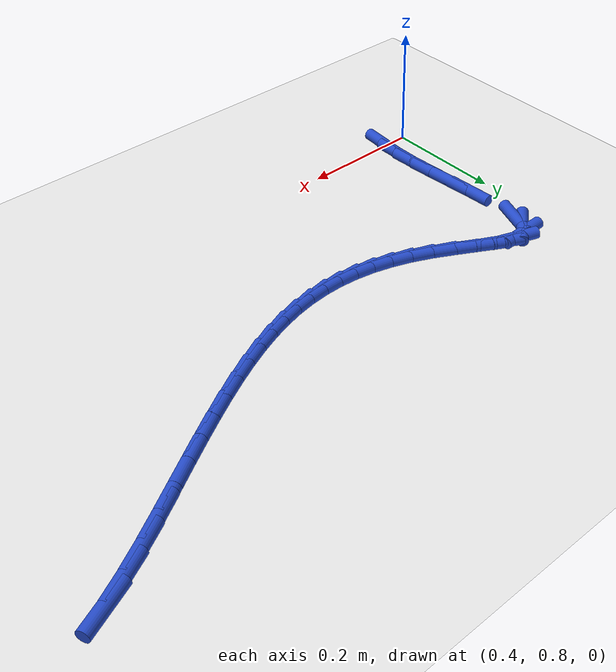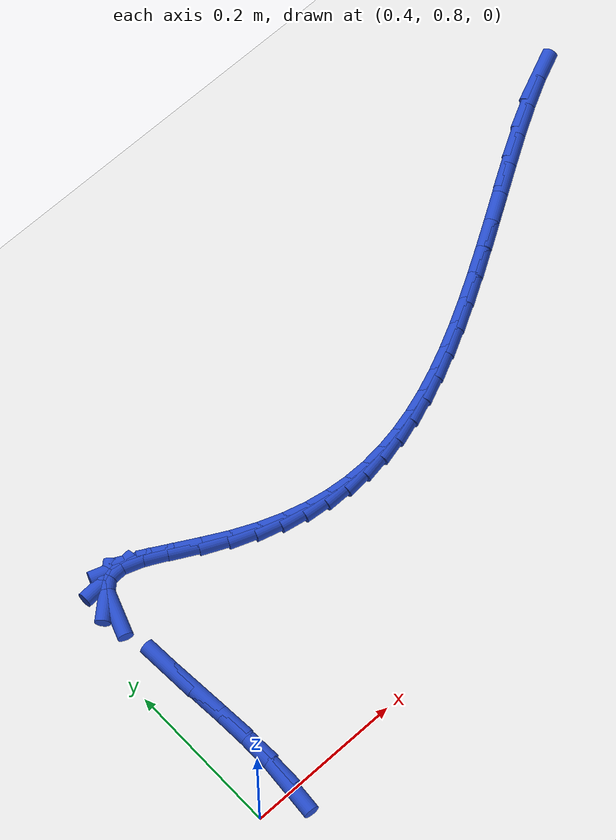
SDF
<sdf version="1.6">
 <world name="default">
  <model name="ground_plane">
   <static>1</static>
   <link name="link">
    <collision name="collision">
     <geometry><plane><normal>0 0 1</normal><size>100 100</size></plane></geometry>
     <surface><friction><ode><mu>100</mu><mu2>50</mu2></ode></friction></surface>
    </collision>
    <visual name="visual">
     <cast_shadows>0</cast_shadows>
     <geometry><plane><normal>0 0 1</normal><size>100 100</size></plane></geometry>
     <material>
      <script><uri>file://media/materials/scripts/gazebo.material</uri><name>Gazebo/WhiteGlow</name></script>
     </material>
    </visual>
   </link>
  </model>
  <model name="line">
   <link name="link_30">
    <pose>0.4498031476568334 0.8027802074671776 0.01 0 1.57 1.4865435165023273</pose>
    <collision name="collision">
     <geometry><cylinder><radius>0.01</radius><length>0.08</length></cylinder></geometry>
    </collision>
    <visual name="visual">
     <material>
      <script><name>Gazebo/Blue</name><uri>file://media/materials/scripts/gazebo.material</uri></script>
     </material>
     <geometry><cylinder><radius>0.01</radius><length>0.08</length></cylinder></geometry>
    </visual>
   </link>
   <link name="link_31">
    <pose>0.452923564762341 0.8397288876807449 0.01 0 1.57 1.562304591862251</pose>
    <collision name="collision">
     <geometry><cylinder><radius>0.01</radius><length>0.08</length></cylinder></geometry>
    </collision>
    <visual name="visual">
     <material>
      <script><name>Gazebo/Blue</name><uri>file://media/materials/scripts/gazebo.material</uri></script>
     </material>
     <geometry><cylinder><radius>0.01</radius><length>0.08</length></cylinder></geometry>
    </visual>
   </link>
   <link name="link_32">
    <pose>0.45326319179582636 0.8797229375053843 0.01 0 1.57 -1.5270688987369447</pose>
    <collision name="collision">
     <geometry><cylinder><radius>0.01</radius><length>0.08</length></cylinder></geometry>
    </collision>
    <visual name="visual">
     <material>
      <script><name>Gazebo/Blue</name><uri>file://media/materials/scripts/gazebo.material</uri></script>
     </material>
     <geometry><cylinder><radius>0.01</radius><length>0.08</length></cylinder></geometry>
    </visual>
   </link>
   <link name="link_33">
    <pose>0.451417649953982 0.921901622471293 0.01 0 1.57 -1.5018023446379443</pose>
    <collision name="collision">
     <geometry><cylinder><radius>0.01</radius><length>0.08</length></cylinder></geometry>
    </collision>
    <visual name="visual">
     <material>
      <script><name>Gazebo/Blue</name><uri>file://media/materials/scripts/gazebo.material</uri></script>
     </material>
     <geometry><cylinder><radius>0.01</radius><length>0.08</length></cylinder></geometry>
    </visual>
   </link>
   <link name="link_34">
    <pose>0.4484644470323517 0.9646374586436969 0.01 0 1.57 -1.4995237731716504</pose>
    <collision name="collision">
     <geometry><cylinder><radius>0.01</radius><length>0.08</length></cylinder></geometry>
    </collision>
    <visual name="visual">
     <material>
      <script><name>Gazebo/Blue</name><uri>file://media/materials/scripts/gazebo.material</uri></script>
     </material>
     <geometry><cylinder><radius>0.01</radius><length>0.08</length></cylinder></geometry>
    </visual>
   </link>
   <link name="link_35">
    <pose>0.445490917989463 1.006287325687106 0.01 0 1.57 -1.5218508118113179</pose>
    <collision name="collision">
     <geometry><cylinder><radius>0.01</radius><length>0.08</length></cylinder></geometry>
    </collision>
    <visual name="visual">
     <material>
      <script><name>Gazebo/Blue</name><uri>file://media/materials/scripts/gazebo.material</uri></script>
     </material>
     <geometry><cylinder><radius>0.01</radius><length>0.08</length></cylinder></geometry>
    </visual>
   </link>
   <link name="link_38">
    <pose>0.4473217237185165 1.1082899086884652 0.01 0 1.57 1.2124259270177387</pose>
    <collision name="collision">
     <geometry><cylinder><radius>0.01</radius><length>0.08</length></cylinder></geometry>
    </collision>
    <visual name="visual">
     <material>
      <script><name>Gazebo/Blue</name><uri>file://media/materials/scripts/gazebo.material</uri></script>
     </material>
     <geometry><cylinder><radius>0.01</radius><length>0.08</length></cylinder></geometry>
    </visual>
   </link>
   <link name="link_39">
    <pose>0.4551402397758649 1.1291646958609953 0.01 0 1.57 0.7185179351799432</pose>
    <collision name="collision">
     <geometry><cylinder><radius>0.01</radius><length>0.08</length></cylinder></geometry>
    </collision>
    <visual name="visual">
     <material>
      <script><name>Gazebo/Blue</name><uri>file://media/materials/scripts/gazebo.material</uri></script>
     </material>
     <geometry><cylinder><radius>0.01</radius><length>0.08</length></cylinder></geometry>
    </visual>
   </link>
   <link name="link_40">
    <pose>0.46837510450459013 1.1407379122270802 0.01 0 1.57 0.03899752587914408</pose>
    <collision name="collision">
     <geometry><cylinder><radius>0.01</radius><length>0.08</length></cylinder></geometry>
    </collision>
    <visual name="visual">
     <material>
      <script><name>Gazebo/Blue</name><uri>file://media/materials/scripts/gazebo.material</uri></script>
     </material>
     <geometry><cylinder><radius>0.01</radius><length>0.08</length></cylinder></geometry>
    </visual>
   </link>
   <link name="link_41">
    <pose>0.48803439375470553 1.1415049647540974 0.01 0 1.57 -0.3367340852690993</pose>
    <collision name="collision">
     <geometry><cylinder><radius>0.01</radius><length>0.08</length></cylinder></geometry>
    </collision>
    <visual name="visual">
     <material>
      <script><name>Gazebo/Blue</name><uri>file://media/materials/scripts/gazebo.material</uri></script>
     </material>
     <geometry><cylinder><radius>0.01</radius><length>0.08</length></cylinder></geometry>
    </visual>
   </link>
   <link name="link_42">
    <pose>0.513652505792524 1.13253692123619 0.01 0 1.57 -0.4756875289552192</pose>
    <collision name="collision">
     <geometry><cylinder><radius>0.01</radius><length>0.08</length></cylinder></geometry>
    </collision>
    <visual name="visual">
     <material>
      <script><name>Gazebo/Blue</name><uri>file://media/materials/scripts/gazebo.material</uri></script>
     </material>
     <geometry><cylinder><radius>0.01</radius><length>0.08</length></cylinder></geometry>
    </visual>
   </link>
   <link name="link_43">
    <pose>0.5434614882937465 1.1171810687952972 0.01 0 1.57 -0.5173974170125976</pose>
    <collision name="collision">
     <geometry><cylinder><radius>0.01</radius><length>0.08</length></cylinder></geometry>
    </collision>
    <visual name="visual">
     <material>
      <script><name>Gazebo/Blue</name><uri>file://media/materials/scripts/gazebo.material</uri></script>
     </material>
     <geometry><cylinder><radius>0.01</radius><length>0.08</length></cylinder></geometry>
    </visual>
   </link>
   <link name="link_44">
    <pose>0.5756485593789893 1.0988630466503102 0.01 0 1.57 -0.49914095550639814</pose>
    <collision name="collision">
     <geometry><cylinder><radius>0.01</radius><length>0.08</length></cylinder></geometry>
    </collision>
    <visual name="visual">
     <material>
      <script><name>Gazebo/Blue</name><uri>file://media/materials/scripts/gazebo.material</uri></script>
     </material>
     <geometry><cylinder><radius>0.01</radius><length>0.08</length></cylinder></geometry>
    </visual>
   </link>
   <link name="link_45">
    <pose>0.6084022188891854 1.0810061579729695 0.01 0 1.57 -0.4352174981019442</pose>
    <collision name="collision">
     <geometry><cylinder><radius>0.01</radius><length>0.08</length></cylinder></geometry>
    </collision>
    <visual name="visual">
     <material>
      <script><name>Gazebo/Blue</name><uri>file://media/materials/scripts/gazebo.material</uri></script>
     </material>
     <geometry><cylinder><radius>0.01</radius><length>0.08</length></cylinder></geometry>
    </visual>
   </link>
   <link name="link_46">
    <pose>0.6404100518903886 1.0661240795502986 0.01 0 1.57 -0.3581395807517648</pose>
    <collision name="collision">
     <geometry><cylinder><radius>0.01</radius><length>0.08</length></cylinder></geometry>
    </collision>
    <visual name="visual">
     <material>
      <script><name>Gazebo/Blue</name><uri>file://media/materials/scripts/gazebo.material</uri></script>
     </material>
     <geometry><cylinder><radius>0.01</radius><length>0.08</length></cylinder></geometry>
    </visual>
   </link>
   <link name="link_47">
    <pose>0.6716134879758556 1.0544452470784809 0.01 0 1.57 -0.27454881219492805</pose>
    <collision name="collision">
     <geometry><cylinder><radius>0.01</radius><length>0.08</length></cylinder></geometry>
    </collision>
    <visual name="visual">
     <material>
      <script><name>Gazebo/Blue</name><uri>file://media/materials/scripts/gazebo.material</uri></script>
     </material>
     <geometry><cylinder><radius>0.01</radius><length>0.08</length></cylinder></geometry>
    </visual>
   </link>
   <link name="link_48">
    <pose>0.7021477320030255 1.0458449239213334 0.01 0 1.57 -0.18604025595041354</pose>
    <collision name="collision">
     <geometry><cylinder><radius>0.01</radius><length>0.08</length></cylinder></geometry>
    </collision>
    <visual name="visual">
     <material>
      <script><name>Gazebo/Blue</name><uri>file://media/materials/scripts/gazebo.material</uri></script>
     </material>
     <geometry><cylinder><radius>0.01</radius><length>0.08</length></cylinder></geometry>
    </visual>
   </link>
   <link name="link_49">
    <pose>0.7321479888293365 1.0401983734426734 0.01 0 1.57 -0.09489567620135819</pose>
    <collision name="collision">
     <geometry><cylinder><radius>0.01</radius><length>0.08</length></cylinder></geometry>
    </collision>
    <visual name="visual">
     <material>
      <script><name>Gazebo/Blue</name><uri>file://media/materials/scripts/gazebo.material</uri></script>
     </material>
     <geometry><cylinder><radius>0.01</radius><length>0.08</length></cylinder></geometry>
    </visual>
   </link>
   <link name="link_50">
    <pose>0.7617494633122276 1.037380859006318 0.01 0 1.57 -0.003858983766080388</pose>
    <collision name="collision">
     <geometry><cylinder><radius>0.01</radius><length>0.08</length></cylinder></geometry>
    </collision>
    <visual name="visual">
     <material>
      <script><name>Gazebo/Blue</name><uri>file://media/materials/scripts/gazebo.material</uri></script>
     </material>
     <geometry><cylinder><radius>0.01</radius><length>0.08</length></cylinder></geometry>
    </visual>
   </link>
   <link name="link_51">
    <pose>0.791087360309137 1.0372676439760853 0.01 0 1.57 0.08423661307787737</pose>
    <collision name="collision">
     <geometry><cylinder><radius>0.01</radius><length>0.08</length></cylinder></geometry>
    </collision>
    <visual name="visual">
     <material>
      <script><name>Gazebo/Blue</name><uri>file://media/materials/scripts/gazebo.material</uri></script>
     </material>
     <geometry><cylinder><radius>0.01</radius><length>0.08</length></cylinder></geometry>
    </visual>
   </link>
   <link name="link_52">
    <pose>0.8202968846775037 1.0397339917157915 0.01 0 1.57 0.1668726121571206</pose>
    <collision name="collision">
     <geometry><cylinder><radius>0.01</radius><length>0.08</length></cylinder></geometry>
    </collision>
    <visual name="visual">
     <material>
      <script><name>Gazebo/Blue</name><uri>file://media/materials/scripts/gazebo.material</uri></script>
     </material>
     <geometry><cylinder><radius>0.01</radius><length>0.08</length></cylinder></geometry>
    </visual>
   </link>
   <link name="link_53">
    <pose>0.8495132412747664 1.044655165589255 0.01 0 1.57 0.24214480410317143</pose>
    <collision name="collision">
     <geometry><cylinder><radius>0.01</radius><length>0.08</length></cylinder></geometry>
    </collision>
    <visual name="visual">
     <material>
      <script><name>Gazebo/Blue</name><uri>file://media/materials/scripts/gazebo.material</uri></script>
     </material>
     <geometry><cylinder><radius>0.01</radius><length>0.08</length></cylinder></geometry>
    </visual>
   </link>
   <link name="link_54">
    <pose>0.8788716349583637 1.0519064289602928 0.01 0 1.57 0.30888280600090806</pose>
    <collision name="collision">
     <geometry><cylinder><radius>0.01</radius><length>0.08</length></cylinder></geometry>
    </collision>
    <visual name="visual">
     <material>
      <script><name>Gazebo/Blue</name><uri>file://media/materials/scripts/gazebo.material</uri></script>
     </material>
     <geometry><cylinder><radius>0.01</radius><length>0.08</length></cylinder></geometry>
    </visual>
   </link>
   <link name="link_55">
    <pose>0.9085072705857342 1.0613630451927218 0.01 0 1.57 0.3666019316522715</pose>
    <collision name="collision">
     <geometry><cylinder><radius>0.01</radius><length>0.08</length></cylinder></geometry>
    </collision>
    <visual name="visual">
     <material>
      <script><name>Gazebo/Blue</name><uri>file://media/materials/scripts/gazebo.material</uri></script>
     </material>
     <geometry><cylinder><radius>0.01</radius><length>0.08</length></cylinder></geometry>
    </visual>
   </link>
   <link name="link_56">
    <pose>0.9385553530143166 1.07290027765036 0.01 0 1.57 0.4153551293805062</pose>
    <collision name="collision">
     <geometry><cylinder><radius>0.01</radius><length>0.08</length></cylinder></geometry>
    </collision>
    <visual name="visual">
     <material>
      <script><name>Gazebo/Blue</name><uri>file://media/materials/scripts/gazebo.material</uri></script>
     </material>
     <geometry><cylinder><radius>0.01</radius><length>0.08</length></cylinder></geometry>
    </visual>
   </link>
   <link name="link_57">
    <pose>0.9691510871015495 1.0863933896970244 0.01 0 1.57 0.4555575314570801</pose>
    <collision name="collision">
     <geometry><cylinder><radius>0.01</radius><length>0.08</length></cylinder></geometry>
    </collision>
    <visual name="visual">
     <material>
      <script><name>Gazebo/Blue</name><uri>file://media/materials/scripts/gazebo.material</uri></script>
     </material>
     <geometry><cylinder><radius>0.01</radius><length>0.08</length></cylinder></geometry>
    </visual>
   </link>
   <link name="link_58">
    <pose>1.0004296777048713 1.1017176446965316 0.01 0 1.57 0.4878312058477289</pose>
    <collision name="collision">
     <geometry><cylinder><radius>0.01</radius><length>0.08</length></cylinder></geometry>
    </collision>
    <visual name="visual">
     <material>
      <script><name>Gazebo/Blue</name><uri>file://media/materials/scripts/gazebo.material</uri></script>
     </material>
     <geometry><cylinder><radius>0.01</radius><length>0.08</length></cylinder></geometry>
    </visual>
   </link>
   <link name="link_59">
    <pose>1.0325263296817215 1.1187483060127004 0.01 0 1.57 0.5128892839694739</pose>
    <collision name="collision">
     <geometry><cylinder><radius>0.01</radius><length>0.08</length></cylinder></geometry>
    </collision>
    <visual name="visual">
     <material>
      <script><name>Gazebo/Blue</name><uri>file://media/materials/scripts/gazebo.material</uri></script>
     </material>
     <geometry><cylinder><radius>0.01</radius><length>0.08</length></cylinder></geometry>
    </visual>
   </link>
   <link name="link_60">
    <pose>1.0655762478895379 1.1373606370093472 0.01 0 1.57 0.5314598005480564</pose>
    <collision name="collision">
     <geometry><cylinder><radius>0.01</radius><length>0.08</length></cylinder></geometry>
    </collision>
    <visual name="visual">
     <material>
      <script><name>Gazebo/Blue</name><uri>file://media/materials/scripts/gazebo.material</uri></script>
     </material>
     <geometry><cylinder><radius>0.01</radius><length>0.08</length></cylinder></geometry>
    </visual>
   </link>
   <link name="link_61">
    <pose>1.0997146371857591 1.157429901050289 0.01 0 1.57 0.5442412671821478</pose>
    <collision name="collision">
     <geometry><cylinder><radius>0.01</radius><length>0.08</length></cylinder></geometry>
    </collision>
    <visual name="visual">
     <material>
      <script><name>Gazebo/Blue</name><uri>file://media/materials/scripts/gazebo.material</uri></script>
     </material>
     <geometry><cylinder><radius>0.01</radius><length>0.08</length></cylinder></geometry>
    </visual>
   </link>
   <link name="link_62">
    <pose>1.135076702427824 1.1788313614993438 0.01 0 1.57 0.5518592015569649</pose>
    <collision name="collision">
     <geometry><cylinder><radius>0.01</radius><length>0.08</length></cylinder></geometry>
    </collision>
    <visual name="visual">
     <material>
      <script><name>Gazebo/Blue</name><uri>file://media/materials/scripts/gazebo.material</uri></script>
     </material>
     <geometry><cylinder><radius>0.01</radius><length>0.08</length></cylinder></geometry>
    </visual>
   </link>
   <link name="link_63">
    <pose>1.1717953141727884 1.2014377699256131 0.01 0 1.57 0.5523546900034856</pose>
    <collision name="collision">
     <geometry><cylinder><radius>0.01</radius><length>0.08</length></cylinder></geometry>
    </collision>
    <visual name="visual">
     <material>
      <script><name>Gazebo/Blue</name><uri>file://media/materials/scripts/gazebo.material</uri></script>
     </material>
     <geometry><cylinder><radius>0.01</radius><length>0.08</length></cylinder></geometry>
    </visual>
   </link>
   <link name="link_64">
    <pose>1.209710534994802 1.224806805532491 0.01 0 1.57 0.5412774371412772</pose>
    <collision name="collision">
     <geometry><cylinder><radius>0.01</radius><length>0.08</length></cylinder></geometry>
    </collision>
    <visual name="visual">
     <material>
      <script><name>Gazebo/Blue</name><uri>file://media/materials/scripts/gazebo.material</uri></script>
     </material>
     <geometry><cylinder><radius>0.01</radius><length>0.08</length></cylinder></geometry>
    </visual>
   </link>
   <link name="link_65">
    <pose>1.2480880930259786 1.2478781421344274 0.01 0 1.57 0.5172607967081113</pose>
    <collision name="collision">
     <geometry><cylinder><radius>0.01</radius><length>0.08</length></cylinder></geometry>
    </collision>
    <visual name="visual">
     <material>
      <script><name>Gazebo/Blue</name><uri>file://media/materials/scripts/gazebo.material</uri></script>
     </material>
     <geometry><cylinder><radius>0.01</radius><length>0.08</length></cylinder></geometry>
    </visual>
   </link>
   <link name="link_66">
    <pose>1.2861269325055669 1.269519591573711 0.01 0 1.57 0.477209621101128</pose>
    <collision name="collision">
     <geometry><cylinder><radius>0.01</radius><length>0.08</length></cylinder></geometry>
    </collision>
    <visual name="visual">
     <material>
      <script><name>Gazebo/Blue</name><uri>file://media/materials/scripts/gazebo.material</uri></script>
     </material>
     <geometry><cylinder><radius>0.01</radius><length>0.08</length></cylinder></geometry>
    </visual>
   </link>
   <link name="link_67">
    <pose>1.3230259976728154 1.288598965692632 0.01 0 1.57 0.41459044498921754</pose>
    <collision name="collision">
     <geometry><cylinder><radius>0.01</radius><length>0.08</length></cylinder></geometry>
    </collision>
    <visual name="visual">
     <material>
      <script><name>Gazebo/Blue</name><uri>file://media/materials/scripts/gazebo.material</uri></script>
     </material>
     <geometry><cylinder><radius>0.01</radius><length>0.08</length></cylinder></geometry>
    </visual>
   </link>
  </model>
 </world>
</sdf>
